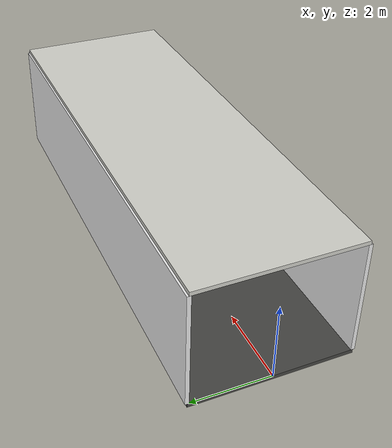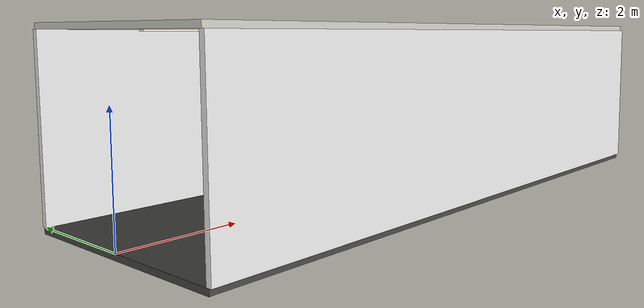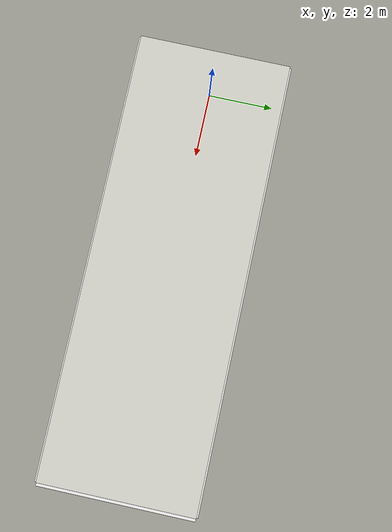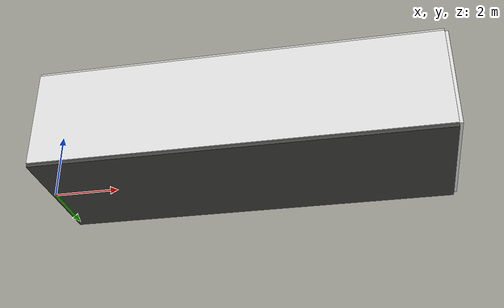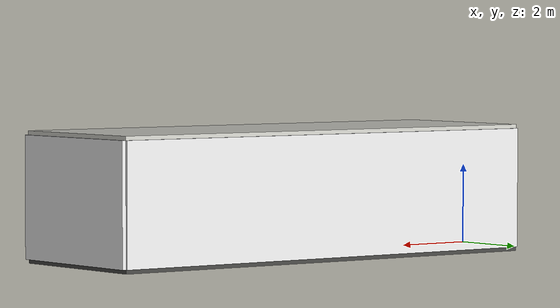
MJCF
<mujoco model="TinyRacer Gate9 indoor offset trial">
  <option integrator="RK4" density="1.225" viscosity="1.8e-5" timestep="0.001"/>
  <compiler inertiafromgeom="false" autolimits="true"/>
  <statistic center="6 0 1.5" extent="7"/>
  <visual>
    <headlight diffuse="0.12 0.12 0.12" ambient="0.08 0.08 0.08"
               specular="0 0 0"/>
    <rgba haze="0.03 0.03 0.03 0" fog="1 1 1 0"/>
    <map fogstart="0" fogend="0"/>
    <global azimuth="135" elevation="-18" ellipsoidinertia="true"/>
  </visual>
  <asset>
    <texture name="corridor_floor_texture" type="2d" builtin="checker"
             rgb1="0.31 0.31 0.30" rgb2="0.23 0.23 0.22"
             width="512" height="512"/>
    <texture name="corridor_wall_texture" type="2d"
             file="textures/off_white_painted_plaster.png"/>
    <material name="corridor_floor" texture="corridor_floor_texture"
              texrepeat="12 4" texuniform="true" reflectance="0.12"
              specular="0.18" shininess="0.25"/>
    <material name="corridor_wall" texture="corridor_wall_texture"
              texrepeat="6 2" texuniform="true" rgba="1 1 1 1"
              specular="0.08" shininess="0.12"/>
    <material name="corridor_ceiling" rgba="0.82 0.82 0.79 1"
              specular="0.04" shininess="0.08"/>
    <material name="strip_light" rgba="1 0.98 0.86 1"
              emission="1" specular="0" shininess="0"/>
    <texture type="2d" name="newbeedrone_gate_texture"
             file="textures/newbeedrone_gate_front_rgba_v1.png"/>
    <material name="newbeedrone_gate" texture="newbeedrone_gate_texture"
              texuniform="false" rgba="1 1 1 1" specular="0.08"
              shininess="0.12"/>
    <mesh name="newbeedrone_gate_top"
          file="meshes/newbeedrone_gate_top.obj" scale="1 0.9 0.9"/>
    <mesh name="newbeedrone_gate_bottom"
          file="meshes/newbeedrone_gate_bottom.obj" scale="1 0.9 0.9"/>
    <mesh name="newbeedrone_gate_left"
          file="meshes/newbeedrone_gate_left.obj" scale="1 0.9 0.9"/>
    <mesh name="newbeedrone_gate_right"
          file="meshes/newbeedrone_gate_right.obj" scale="1 0.9 0.9"/>
  </asset>
  <worldbody>
    <camera name="crazyflie_corridor_preview" pos="0 0 1.5"
            xyaxes="0 -1 0 0 0 1" fovy="47.168554"/>
    <!-- Clear interior: x=0..12 m, y=-2..2 m, z=0..3 m. -->
    <geom name="corridor_floor" type="box" pos="6 0 -0.05"
          size="6 2.05 0.05" material="corridor_floor"
          contype="1" conaffinity="1"/>
    <!-- Rotate local textured XY planes onto the inward-facing wall surfaces. -->
    <geom name="corridor_left_wall" type="box" pos="6 2.05 1.5"
          size="6 1.5 0.05" euler="90 0 0" material="corridor_wall"
          contype="1" conaffinity="1"/>
    <geom name="corridor_right_wall" type="box" pos="6 -2.05 1.5"
          size="6 1.5 0.05" euler="90 0 0" material="corridor_wall"
          contype="1" conaffinity="1"/>
    <geom name="corridor_end_wall" type="box" pos="12.05 0 1.5"
          size="1.5 2.05 0.05" euler="0 90 0" material="corridor_wall"
          contype="1" conaffinity="1"/>
    <geom name="corridor_ceiling" type="box" pos="6 0 3.05"
          size="6 2.05 0.05" material="corridor_ceiling"
          contype="1" conaffinity="1"/>

    <!-- Gate9 trial gate: pinned 0.45 m opening and 0.555 m rail-center span. -->
    <body name="newbeedrone_gate" pos="2.2 0.18 1.5">
      <geom type="mesh" mesh="newbeedrone_gate_top"
            material="newbeedrone_gate" contype="0" conaffinity="0"/>
      <geom type="mesh" mesh="newbeedrone_gate_bottom"
            material="newbeedrone_gate" contype="0" conaffinity="0"/>
      <geom type="mesh" mesh="newbeedrone_gate_left"
            material="newbeedrone_gate" contype="0" conaffinity="0"/>
      <geom type="mesh" mesh="newbeedrone_gate_right"
            material="newbeedrone_gate" contype="0" conaffinity="0"/>
      <geom name="gate_left" type="box" pos="0 -0.279 0"
            size="0.025 0.054 0.225" rgba="0 0 0 0"
            contype="1" conaffinity="1"/>
      <geom name="gate_right" type="box" pos="0 0.279 0"
            size="0.025 0.054 0.225" rgba="0 0 0 0"
            contype="1" conaffinity="1"/>
      <geom name="gate_top" type="box" pos="0 0 0.2775"
            size="0.025 0.333 0.054" rgba="0 0 0 0"
            contype="1" conaffinity="1"/>
      <geom name="gate_bottom" type="box" pos="0 0 -0.2775"
            size="0.025 0.333 0.054" rgba="0 0 0 0"
            contype="1" conaffinity="1"/>
    </body>

    <!-- The emissive geom makes the fixture visible; these lights illuminate it. -->
    <geom name="ceiling_strip_light" type="box" pos="6 0 2.985"
          size="5.5 0.055 0.015" material="strip_light"
          contype="0" conaffinity="0"/>
    <light name="strip_light_1" pos="1 0 2.94" dir="0 0 -1"
           diffuse="0.85 0.82 0.72" specular="0.12 0.12 0.10"
           cutoff="75" exponent="1" attenuation="0.25 0.08 0.02"
           castshadow="true"/>
    <light name="strip_light_2" pos="3.5 0 2.94" dir="0 0 -1"
           diffuse="0.85 0.82 0.72" specular="0.12 0.12 0.10"
           cutoff="75" exponent="1" attenuation="0.25 0.08 0.02"
           castshadow="true"/>
    <light name="strip_light_3" pos="6 0 2.94" dir="0 0 -1"
           diffuse="0.85 0.82 0.72" specular="0.12 0.12 0.10"
           cutoff="75" exponent="1" attenuation="0.25 0.08 0.02"
           castshadow="true"/>
    <light name="strip_light_4" pos="8.5 0 2.94" dir="0 0 -1"
           diffuse="0.85 0.82 0.72" specular="0.12 0.12 0.10"
           cutoff="75" exponent="1" attenuation="0.25 0.08 0.02"
           castshadow="true"/>
    <light name="strip_light_5" pos="11 0 2.94" dir="0 0 -1"
           diffuse="0.85 0.82 0.72" specular="0.12 0.12 0.10"
           cutoff="75" exponent="1" attenuation="0.25 0.08 0.02"
           castshadow="true"/>
  </worldbody>
</mujoco>
